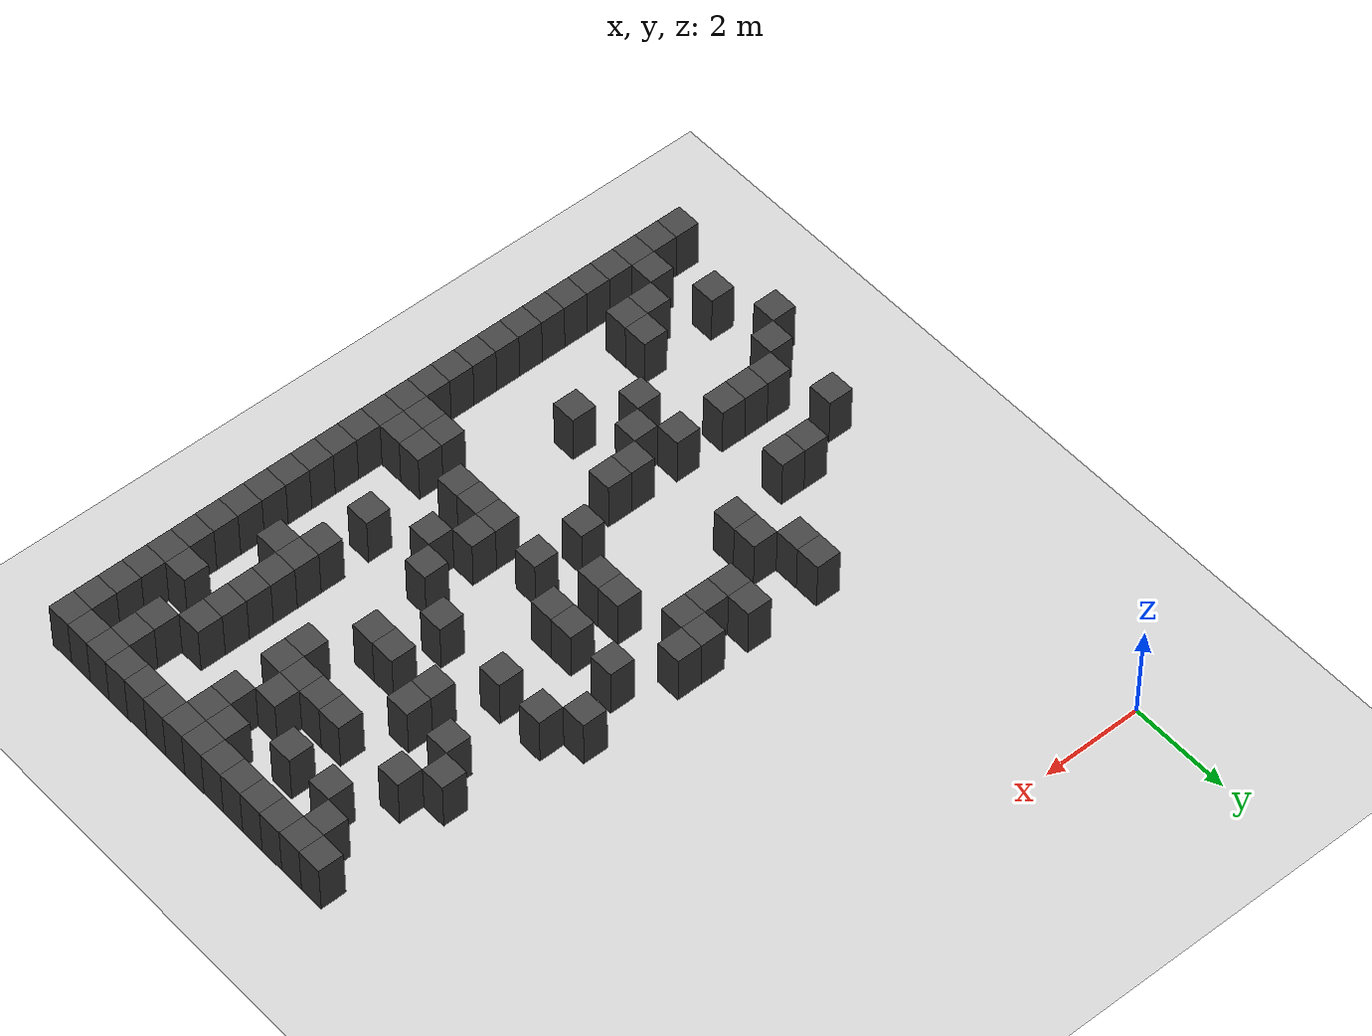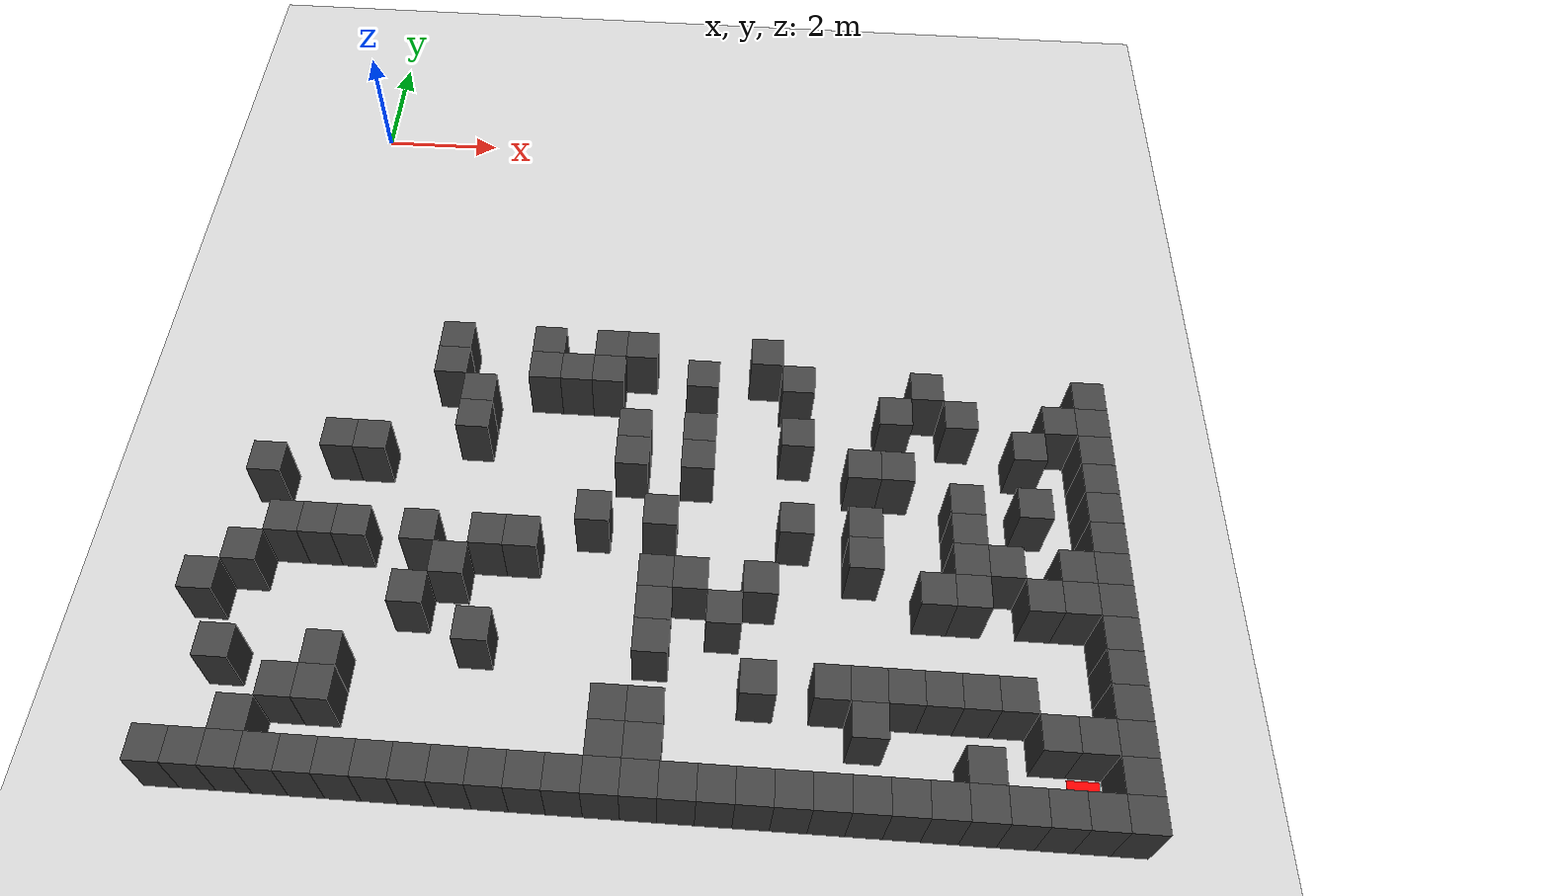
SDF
<sdf version="1.7">
 <world name="map_4752">
  <model name="ground_plane">
   <static>true</static>
   <link name="link">
    <collision name="collision">
     <geometry><plane><normal>0 0 1</normal><size>200 200</size></plane></geometry>
    </collision>
    <visual name="visual">
     <geometry><plane><normal>0 0 1</normal><size>200 200</size></plane></geometry>
     <material><ambient>0.8 0.8 0.8 1</ambient><diffuse>0.8 0.8 0.8 1</diffuse></material>
    </visual>
   </link>
  </model>
  <model name="maze_environment">
   <static>true</static>
   <link name="wall_492">
    <pose>2.250 -5.250 0.500 0 0 0</pose>
    <collision name="col"><geometry><box><size>0.5 0.5 1.0</size></box></geometry></collision>
    <visual name="vis">
     <geometry><box><size>0.5 0.5 1.0</size></box></geometry>
     <material><ambient>0.15 0.15 0.15 1</ambient><diffuse>0.25 0.25 0.25 1</diffuse></material>
    </visual>
   </link>
   <link name="wall_493">
    <pose>3.750 -5.250 0.500 0 0 0</pose>
    <collision name="col"><geometry><box><size>0.5 0.5 1.0</size></box></geometry></collision>
    <visual name="vis">
     <geometry><box><size>0.5 0.5 1.0</size></box></geometry>
     <material><ambient>0.15 0.15 0.15 1</ambient><diffuse>0.25 0.25 0.25 1</diffuse></material>
    </visual>
   </link>
   <link name="wall_494">
    <pose>4.750 -5.250 0.500 0 0 0</pose>
    <collision name="col"><geometry><box><size>0.5 0.5 1.0</size></box></geometry></collision>
    <visual name="vis">
     <geometry><box><size>0.5 0.5 1.0</size></box></geometry>
     <material><ambient>0.15 0.15 0.15 1</ambient><diffuse>0.25 0.25 0.25 1</diffuse></material>
    </visual>
   </link>
   <link name="wall_495">
    <pose>5.250 -5.250 0.500 0 0 0</pose>
    <collision name="col"><geometry><box><size>0.5 0.5 1.0</size></box></geometry></collision>
    <visual name="vis">
     <geometry><box><size>0.5 0.5 1.0</size></box></geometry>
     <material><ambient>0.15 0.15 0.15 1</ambient><diffuse>0.25 0.25 0.25 1</diffuse></material>
    </visual>
   </link>
   <link name="wall_496">
    <pose>7.250 -5.250 0.500 0 0 0</pose>
    <collision name="col"><geometry><box><size>0.5 0.5 1.0</size></box></geometry></collision>
    <visual name="vis">
     <geometry><box><size>0.5 0.5 1.0</size></box></geometry>
     <material><ambient>0.15 0.15 0.15 1</ambient><diffuse>0.25 0.25 0.25 1</diffuse></material>
    </visual>
   </link>
   <link name="wall_503">
    <pose>2.250 -5.750 0.500 0 0 0</pose>
    <collision name="col"><geometry><box><size>0.5 0.5 1.0</size></box></geometry></collision>
    <visual name="vis">
     <geometry><box><size>0.5 0.5 1.0</size></box></geometry>
     <material><ambient>0.15 0.15 0.15 1</ambient><diffuse>0.25 0.25 0.25 1</diffuse></material>
    </visual>
   </link>
   <link name="wall_504">
    <pose>3.750 -5.750 0.500 0 0 0</pose>
    <collision name="col"><geometry><box><size>0.5 0.5 1.0</size></box></geometry></collision>
    <visual name="vis">
     <geometry><box><size>0.5 0.5 1.0</size></box></geometry>
     <material><ambient>0.15 0.15 0.15 1</ambient><diffuse>0.25 0.25 0.25 1</diffuse></material>
    </visual>
   </link>
   <link name="wall_505">
    <pose>4.250 -5.750 0.500 0 0 0</pose>
    <collision name="col"><geometry><box><size>0.5 0.5 1.0</size></box></geometry></collision>
    <visual name="vis">
     <geometry><box><size>0.5 0.5 1.0</size></box></geometry>
     <material><ambient>0.15 0.15 0.15 1</ambient><diffuse>0.25 0.25 0.25 1</diffuse></material>
    </visual>
   </link>
   <link name="wall_506">
    <pose>4.750 -5.750 0.500 0 0 0</pose>
    <collision name="col"><geometry><box><size>0.5 0.5 1.0</size></box></geometry></collision>
    <visual name="vis">
     <geometry><box><size>0.5 0.5 1.0</size></box></geometry>
     <material><ambient>0.15 0.15 0.15 1</ambient><diffuse>0.25 0.25 0.25 1</diffuse></material>
    </visual>
   </link>
   <link name="wall_507">
    <pose>6.250 -5.750 0.500 0 0 0</pose>
    <collision name="col"><geometry><box><size>0.5 0.5 1.0</size></box></geometry></collision>
    <visual name="vis">
     <geometry><box><size>0.5 0.5 1.0</size></box></geometry>
     <material><ambient>0.15 0.15 0.15 1</ambient><diffuse>0.25 0.25 0.25 1</diffuse></material>
    </visual>
   </link>
   <link name="wall_508">
    <pose>7.750 -5.750 0.500 0 0 0</pose>
    <collision name="col"><geometry><box><size>0.5 0.5 1.0</size></box></geometry></collision>
    <visual name="vis">
     <geometry><box><size>0.5 0.5 1.0</size></box></geometry>
     <material><ambient>0.15 0.15 0.15 1</ambient><diffuse>0.25 0.25 0.25 1</diffuse></material>
    </visual>
   </link>
   <link name="wall_509">
    <pose>9.750 -5.750 0.500 0 0 0</pose>
    <collision name="col"><geometry><box><size>0.5 0.5 1.0</size></box></geometry></collision>
    <visual name="vis">
     <geometry><box><size>0.5 0.5 1.0</size></box></geometry>
     <material><ambient>0.15 0.15 0.15 1</ambient><diffuse>0.25 0.25 0.25 1</diffuse></material>
    </visual>
   </link>
   <link name="wall_510">
    <pose>12.250 -5.750 0.500 0 0 0</pose>
    <collision name="col"><geometry><box><size>0.5 0.5 1.0</size></box></geometry></collision>
    <visual name="vis">
     <geometry><box><size>0.5 0.5 1.0</size></box></geometry>
     <material><ambient>0.15 0.15 0.15 1</ambient><diffuse>0.25 0.25 0.25 1</diffuse></material>
    </visual>
   </link>
   <link name="wall_515">
    <pose>2.750 -6.250 0.500 0 0 0</pose>
    <collision name="col"><geometry><box><size>0.5 0.5 1.0</size></box></geometry></collision>
    <visual name="vis">
     <geometry><box><size>0.5 0.5 1.0</size></box></geometry>
     <material><ambient>0.15 0.15 0.15 1</ambient><diffuse>0.25 0.25 0.25 1</diffuse></material>
    </visual>
   </link>
   <link name="wall_516">
    <pose>9.250 -6.250 0.500 0 0 0</pose>
    <collision name="col"><geometry><box><size>0.5 0.5 1.0</size></box></geometry></collision>
    <visual name="vis">
     <geometry><box><size>0.5 0.5 1.0</size></box></geometry>
     <material><ambient>0.15 0.15 0.15 1</ambient><diffuse>0.25 0.25 0.25 1</diffuse></material>
    </visual>
   </link>
   <link name="wall_517">
    <pose>10.250 -6.250 0.500 0 0 0</pose>
    <collision name="col"><geometry><box><size>0.5 0.5 1.0</size></box></geometry></collision>
    <visual name="vis">
     <geometry><box><size>0.5 0.5 1.0</size></box></geometry>
     <material><ambient>0.15 0.15 0.15 1</ambient><diffuse>0.25 0.25 0.25 1</diffuse></material>
    </visual>
   </link>
   <link name="wall_518">
    <pose>11.750 -6.250 0.500 0 0 0</pose>
    <collision name="col"><geometry><box><size>0.5 0.5 1.0</size></box></geometry></collision>
    <visual name="vis">
     <geometry><box><size>0.5 0.5 1.0</size></box></geometry>
     <material><ambient>0.15 0.15 0.15 1</ambient><diffuse>0.25 0.25 0.25 1</diffuse></material>
    </visual>
   </link>
   <link name="wall_519">
    <pose>12.250 -6.250 0.500 0 0 0</pose>
    <collision name="col"><geometry><box><size>0.5 0.5 1.0</size></box></geometry></collision>
    <visual name="vis">
     <geometry><box><size>0.5 0.5 1.0</size></box></geometry>
     <material><ambient>0.15 0.15 0.15 1</ambient><diffuse>0.25 0.25 0.25 1</diffuse></material>
    </visual>
   </link>
   <link name="wall_529">
    <pose>2.750 -6.750 0.500 0 0 0</pose>
    <collision name="col"><geometry><box><size>0.5 0.5 1.0</size></box></geometry></collision>
    <visual name="vis">
     <geometry><box><size>0.5 0.5 1.0</size></box></geometry>
     <material><ambient>0.15 0.15 0.15 1</ambient><diffuse>0.25 0.25 0.25 1</diffuse></material>
    </visual>
   </link>
   <link name="wall_530">
    <pose>5.250 -6.750 0.500 0 0 0</pose>
    <collision name="col"><geometry><box><size>0.5 0.5 1.0</size></box></geometry></collision>
    <visual name="vis">
     <geometry><box><size>0.5 0.5 1.0</size></box></geometry>
     <material><ambient>0.15 0.15 0.15 1</ambient><diffuse>0.25 0.25 0.25 1</diffuse></material>
    </visual>
   </link>
   <link name="wall_531">
    <pose>6.250 -6.750 0.500 0 0 0</pose>
    <collision name="col"><geometry><box><size>0.5 0.5 1.0</size></box></geometry></collision>
    <visual name="vis">
     <geometry><box><size>0.5 0.5 1.0</size></box></geometry>
     <material><ambient>0.15 0.15 0.15 1</ambient><diffuse>0.25 0.25 0.25 1</diffuse></material>
    </visual>
   </link>
   <link name="wall_532">
    <pose>7.750 -6.750 0.500 0 0 0</pose>
    <collision name="col"><geometry><box><size>0.5 0.5 1.0</size></box></geometry></collision>
    <visual name="vis">
     <geometry><box><size>0.5 0.5 1.0</size></box></geometry>
     <material><ambient>0.15 0.15 0.15 1</ambient><diffuse>0.25 0.25 0.25 1</diffuse></material>
    </visual>
   </link>
   <link name="wall_533">
    <pose>11.250 -6.750 0.500 0 0 0</pose>
    <collision name="col"><geometry><box><size>0.5 0.5 1.0</size></box></geometry></collision>
    <visual name="vis">
     <geometry><box><size>0.5 0.5 1.0</size></box></geometry>
     <material><ambient>0.15 0.15 0.15 1</ambient><diffuse>0.25 0.25 0.25 1</diffuse></material>
    </visual>
   </link>
   <link name="wall_534">
    <pose>12.250 -6.750 0.500 0 0 0</pose>
    <collision name="col"><geometry><box><size>0.5 0.5 1.0</size></box></geometry></collision>
    <visual name="vis">
     <geometry><box><size>0.5 0.5 1.0</size></box></geometry>
     <material><ambient>0.15 0.15 0.15 1</ambient><diffuse>0.25 0.25 0.25 1</diffuse></material>
    </visual>
   </link>
   <link name="wall_542">
    <pose>0.750 -7.250 0.500 0 0 0</pose>
    <collision name="col"><geometry><box><size>0.5 0.5 1.0</size></box></geometry></collision>
    <visual name="vis">
     <geometry><box><size>0.5 0.5 1.0</size></box></geometry>
     <material><ambient>0.15 0.15 0.15 1</ambient><diffuse>0.25 0.25 0.25 1</diffuse></material>
    </visual>
   </link>
   <link name="wall_543">
    <pose>1.250 -7.250 0.500 0 0 0</pose>
    <collision name="col"><geometry><box><size>0.5 0.5 1.0</size></box></geometry></collision>
    <visual name="vis">
     <geometry><box><size>0.5 0.5 1.0</size></box></geometry>
     <material><ambient>0.15 0.15 0.15 1</ambient><diffuse>0.25 0.25 0.25 1</diffuse></material>
    </visual>
   </link>
   <link name="wall_544">
    <pose>5.250 -7.250 0.500 0 0 0</pose>
    <collision name="col"><geometry><box><size>0.5 0.5 1.0</size></box></geometry></collision>
    <visual name="vis">
     <geometry><box><size>0.5 0.5 1.0</size></box></geometry>
     <material><ambient>0.15 0.15 0.15 1</ambient><diffuse>0.25 0.25 0.25 1</diffuse></material>
    </visual>
   </link>
   <link name="wall_545">
    <pose>6.250 -7.250 0.500 0 0 0</pose>
    <collision name="col"><geometry><box><size>0.5 0.5 1.0</size></box></geometry></collision>
    <visual name="vis">
     <geometry><box><size>0.5 0.5 1.0</size></box></geometry>
     <material><ambient>0.15 0.15 0.15 1</ambient><diffuse>0.25 0.25 0.25 1</diffuse></material>
    </visual>
   </link>
   <link name="wall_546">
    <pose>8.750 -7.250 0.500 0 0 0</pose>
    <collision name="col"><geometry><box><size>0.5 0.5 1.0</size></box></geometry></collision>
    <visual name="vis">
     <geometry><box><size>0.5 0.5 1.0</size></box></geometry>
     <material><ambient>0.15 0.15 0.15 1</ambient><diffuse>0.25 0.25 0.25 1</diffuse></material>
    </visual>
   </link>
   <link name="wall_547">
    <pose>9.250 -7.250 0.500 0 0 0</pose>
    <collision name="col"><geometry><box><size>0.5 0.5 1.0</size></box></geometry></collision>
    <visual name="vis">
     <geometry><box><size>0.5 0.5 1.0</size></box></geometry>
     <material><ambient>0.15 0.15 0.15 1</ambient><diffuse>0.25 0.25 0.25 1</diffuse></material>
    </visual>
   </link>
   <link name="wall_548">
    <pose>12.250 -7.250 0.500 0 0 0</pose>
    <collision name="col"><geometry><box><size>0.5 0.5 1.0</size></box></geometry></collision>
    <visual name="vis">
     <geometry><box><size>0.5 0.5 1.0</size></box></geometry>
     <material><ambient>0.15 0.15 0.15 1</ambient><diffuse>0.25 0.25 0.25 1</diffuse></material>
    </visual>
   </link>
   <link name="wall_555">
    <pose>-0.250 -7.750 0.500 0 0 0</pose>
    <collision name="col"><geometry><box><size>0.5 0.5 1.0</size></box></geometry></collision>
    <visual name="vis">
     <geometry><box><size>0.5 0.5 1.0</size></box></geometry>
     <material><ambient>0.15 0.15 0.15 1</ambient><diffuse>0.25 0.25 0.25 1</diffuse></material>
    </visual>
   </link>
   <link name="wall_556">
    <pose>10.250 -7.750 0.500 0 0 0</pose>
    <collision name="col"><geometry><box><size>0.5 0.5 1.0</size></box></geometry></collision>
    <visual name="vis">
     <geometry><box><size>0.5 0.5 1.0</size></box></geometry>
     <material><ambient>0.15 0.15 0.15 1</ambient><diffuse>0.25 0.25 0.25 1</diffuse></material>
    </visual>
   </link>
   <link name="wall_557">
    <pose>11.250 -7.750 0.500 0 0 0</pose>
    <collision name="col"><geometry><box><size>0.5 0.5 1.0</size></box></geometry></collision>
    <visual name="vis">
     <geometry><box><size>0.5 0.5 1.0</size></box></geometry>
     <material><ambient>0.15 0.15 0.15 1</ambient><diffuse>0.25 0.25 0.25 1</diffuse></material>
    </visual>
   </link>
   <link name="wall_558">
    <pose>12.250 -7.750 0.500 0 0 0</pose>
    <collision name="col"><geometry><box><size>0.5 0.5 1.0</size></box></geometry></collision>
    <visual name="vis">
     <geometry><box><size>0.5 0.5 1.0</size></box></geometry>
     <material><ambient>0.15 0.15 0.15 1</ambient><diffuse>0.25 0.25 0.25 1</diffuse></material>
    </visual>
   </link>
   <link name="wall_568">
    <pose>4.750 -8.250 0.500 0 0 0</pose>
    <collision name="col"><geometry><box><size>0.5 0.5 1.0</size></box></geometry></collision>
    <visual name="vis">
     <geometry><box><size>0.5 0.5 1.0</size></box></geometry>
     <material><ambient>0.15 0.15 0.15 1</ambient><diffuse>0.25 0.25 0.25 1</diffuse></material>
    </visual>
   </link>
   <link name="wall_569">
    <pose>5.750 -8.250 0.500 0 0 0</pose>
    <collision name="col"><geometry><box><size>0.5 0.5 1.0</size></box></geometry></collision>
    <visual name="vis">
     <geometry><box><size>0.5 0.5 1.0</size></box></geometry>
     <material><ambient>0.15 0.15 0.15 1</ambient><diffuse>0.25 0.25 0.25 1</diffuse></material>
    </visual>
   </link>
   <link name="wall_570">
    <pose>7.750 -8.250 0.500 0 0 0</pose>
    <collision name="col"><geometry><box><size>0.5 0.5 1.0</size></box></geometry></collision>
    <visual name="vis">
     <geometry><box><size>0.5 0.5 1.0</size></box></geometry>
     <material><ambient>0.15 0.15 0.15 1</ambient><diffuse>0.25 0.25 0.25 1</diffuse></material>
    </visual>
   </link>
   <link name="wall_571">
    <pose>8.750 -8.250 0.500 0 0 0</pose>
    <collision name="col"><geometry><box><size>0.5 0.5 1.0</size></box></geometry></collision>
    <visual name="vis">
     <geometry><box><size>0.5 0.5 1.0</size></box></geometry>
     <material><ambient>0.15 0.15 0.15 1</ambient><diffuse>0.25 0.25 0.25 1</diffuse></material>
    </visual>
   </link>
   <link name="wall_572">
    <pose>10.250 -8.250 0.500 0 0 0</pose>
    <collision name="col"><geometry><box><size>0.5 0.5 1.0</size></box></geometry></collision>
    <visual name="vis">
     <geometry><box><size>0.5 0.5 1.0</size></box></geometry>
     <material><ambient>0.15 0.15 0.15 1</ambient><diffuse>0.25 0.25 0.25 1</diffuse></material>
    </visual>
   </link>
   <link name="wall_573">
    <pose>12.250 -8.250 0.500 0 0 0</pose>
    <collision name="col"><geometry><box><size>0.5 0.5 1.0</size></box></geometry></collision>
    <visual name="vis">
     <geometry><box><size>0.5 0.5 1.0</size></box></geometry>
     <material><ambient>0.15 0.15 0.15 1</ambient><diffuse>0.25 0.25 0.25 1</diffuse></material>
    </visual>
   </link>
   <link name="wall_582">
    <pose>0.250 -8.750 0.500 0 0 0</pose>
    <collision name="col"><geometry><box><size>0.5 0.5 1.0</size></box></geometry></collision>
    <visual name="vis">
     <geometry><box><size>0.5 0.5 1.0</size></box></geometry>
     <material><ambient>0.15 0.15 0.15 1</ambient><diffuse>0.25 0.25 0.25 1</diffuse></material>
    </visual>
   </link>
   <link name="wall_583">
    <pose>0.750 -8.750 0.500 0 0 0</pose>
    <collision name="col"><geometry><box><size>0.5 0.5 1.0</size></box></geometry></collision>
    <visual name="vis">
     <geometry><box><size>0.5 0.5 1.0</size></box></geometry>
     <material><ambient>0.15 0.15 0.15 1</ambient><diffuse>0.25 0.25 0.25 1</diffuse></material>
    </visual>
   </link>
   <link name="wall_584">
    <pose>1.250 -8.750 0.500 0 0 0</pose>
    <collision name="col"><geometry><box><size>0.5 0.5 1.0</size></box></geometry></collision>
    <visual name="vis">
     <geometry><box><size>0.5 0.5 1.0</size></box></geometry>
     <material><ambient>0.15 0.15 0.15 1</ambient><diffuse>0.25 0.25 0.25 1</diffuse></material>
    </visual>
   </link>
   <link name="wall_585">
    <pose>2.250 -8.750 0.500 0 0 0</pose>
    <collision name="col"><geometry><box><size>0.5 0.5 1.0</size></box></geometry></collision>
    <visual name="vis">
     <geometry><box><size>0.5 0.5 1.0</size></box></geometry>
     <material><ambient>0.15 0.15 0.15 1</ambient><diffuse>0.25 0.25 0.25 1</diffuse></material>
    </visual>
   </link>
   <link name="wall_586">
    <pose>3.250 -8.750 0.500 0 0 0</pose>
    <collision name="col"><geometry><box><size>0.5 0.5 1.0</size></box></geometry></collision>
    <visual name="vis">
     <geometry><box><size>0.5 0.5 1.0</size></box></geometry>
     <material><ambient>0.15 0.15 0.15 1</ambient><diffuse>0.25 0.25 0.25 1</diffuse></material>
    </visual>
   </link>
   <link name="wall_587">
    <pose>3.750 -8.750 0.500 0 0 0</pose>
    <collision name="col"><geometry><box><size>0.5 0.5 1.0</size></box></geometry></collision>
    <visual name="vis">
     <geometry><box><size>0.5 0.5 1.0</size></box></geometry>
     <material><ambient>0.15 0.15 0.15 1</ambient><diffuse>0.25 0.25 0.25 1</diffuse></material>
    </visual>
   </link>
   <link name="wall_588">
    <pose>8.750 -8.750 0.500 0 0 0</pose>
    <collision name="col"><geometry><box><size>0.5 0.5 1.0</size></box></geometry></collision>
    <visual name="vis">
     <geometry><box><size>0.5 0.5 1.0</size></box></geometry>
     <material><ambient>0.15 0.15 0.15 1</ambient><diffuse>0.25 0.25 0.25 1</diffuse></material>
    </visual>
   </link>
   <link name="wall_589">
    <pose>10.250 -8.750 0.500 0 0 0</pose>
    <collision name="col"><geometry><box><size>0.5 0.5 1.0</size></box></geometry></collision>
    <visual name="vis">
     <geometry><box><size>0.5 0.5 1.0</size></box></geometry>
     <material><ambient>0.15 0.15 0.15 1</ambient><diffuse>0.25 0.25 0.25 1</diffuse></material>
    </visual>
   </link>
   <link name="wall_590">
    <pose>10.750 -8.750 0.500 0 0 0</pose>
    <collision name="col"><geometry><box><size>0.5 0.5 1.0</size></box></geometry></collision>
    <visual name="vis">
     <geometry><box><size>0.5 0.5 1.0</size></box></geometry>
     <material><ambient>0.15 0.15 0.15 1</ambient><diffuse>0.25 0.25 0.25 1</diffuse></material>
    </visual>
   </link>
   <link name="wall_591">
    <pose>11.750 -8.750 0.500 0 0 0</pose>
    <collision name="col"><geometry><box><size>0.5 0.5 1.0</size></box></geometry></collision>
    <visual name="vis">
     <geometry><box><size>0.5 0.5 1.0</size></box></geometry>
     <material><ambient>0.15 0.15 0.15 1</ambient><diffuse>0.25 0.25 0.25 1</diffuse></material>
    </visual>
   </link>
   <link name="wall_592">
    <pose>12.250 -8.750 0.500 0 0 0</pose>
    <collision name="col"><geometry><box><size>0.5 0.5 1.0</size></box></geometry></collision>
    <visual name="vis">
     <geometry><box><size>0.5 0.5 1.0</size></box></geometry>
     <material><ambient>0.15 0.15 0.15 1</ambient><diffuse>0.25 0.25 0.25 1</diffuse></material>
    </visual>
   </link>
   <link name="wall_598">
    <pose>-0.250 -9.250 0.500 0 0 0</pose>
    <collision name="col"><geometry><box><size>0.5 0.5 1.0</size></box></geometry></collision>
    <visual name="vis">
     <geometry><box><size>0.5 0.5 1.0</size></box></geometry>
     <material><ambient>0.15 0.15 0.15 1</ambient><diffuse>0.25 0.25 0.25 1</diffuse></material>
    </visual>
   </link>
   <link name="wall_599">
    <pose>2.750 -9.250 0.500 0 0 0</pose>
    <collision name="col"><geometry><box><size>0.5 0.5 1.0</size></box></geometry></collision>
    <visual name="vis">
     <geometry><box><size>0.5 0.5 1.0</size></box></geometry>
     <material><ambient>0.15 0.15 0.15 1</ambient><diffuse>0.25 0.25 0.25 1</diffuse></material>
    </visual>
   </link>
   <link name="wall_600">
    <pose>5.750 -9.250 0.500 0 0 0</pose>
    <collision name="col"><geometry><box><size>0.5 0.5 1.0</size></box></geometry></collision>
    <visual name="vis">
     <geometry><box><size>0.5 0.5 1.0</size></box></geometry>
     <material><ambient>0.15 0.15 0.15 1</ambient><diffuse>0.25 0.25 0.25 1</diffuse></material>
    </visual>
   </link>
   <link name="wall_601">
    <pose>6.250 -9.250 0.500 0 0 0</pose>
    <collision name="col"><geometry><box><size>0.5 0.5 1.0</size></box></geometry></collision>
    <visual name="vis">
     <geometry><box><size>0.5 0.5 1.0</size></box></geometry>
     <material><ambient>0.15 0.15 0.15 1</ambient><diffuse>0.25 0.25 0.25 1</diffuse></material>
    </visual>
   </link>
   <link name="wall_602">
    <pose>7.250 -9.250 0.500 0 0 0</pose>
    <collision name="col"><geometry><box><size>0.5 0.5 1.0</size></box></geometry></collision>
    <visual name="vis">
     <geometry><box><size>0.5 0.5 1.0</size></box></geometry>
     <material><ambient>0.15 0.15 0.15 1</ambient><diffuse>0.25 0.25 0.25 1</diffuse></material>
    </visual>
   </link>
   <link name="wall_603">
    <pose>9.750 -9.250 0.500 0 0 0</pose>
    <collision name="col"><geometry><box><size>0.5 0.5 1.0</size></box></geometry></collision>
    <visual name="vis">
     <geometry><box><size>0.5 0.5 1.0</size></box></geometry>
     <material><ambient>0.15 0.15 0.15 1</ambient><diffuse>0.25 0.25 0.25 1</diffuse></material>
    </visual>
   </link>
   <link name="wall_604">
    <pose>10.250 -9.250 0.500 0 0 0</pose>
    <collision name="col"><geometry><box><size>0.5 0.5 1.0</size></box></geometry></collision>
    <visual name="vis">
     <geometry><box><size>0.5 0.5 1.0</size></box></geometry>
     <material><ambient>0.15 0.15 0.15 1</ambient><diffuse>0.25 0.25 0.25 1</diffuse></material>
    </visual>
   </link>
   <link name="wall_605">
    <pose>11.250 -9.250 0.500 0 0 0</pose>
    <collision name="col"><geometry><box><size>0.5 0.5 1.0</size></box></geometry></collision>
    <visual name="vis">
     <geometry><box><size>0.5 0.5 1.0</size></box></geometry>
     <material><ambient>0.15 0.15 0.15 1</ambient><diffuse>0.25 0.25 0.25 1</diffuse></material>
    </visual>
   </link>
   <link name="wall_606">
    <pose>11.750 -9.250 0.500 0 0 0</pose>
    <collision name="col"><geometry><box><size>0.5 0.5 1.0</size></box></geometry></collision>
    <visual name="vis">
     <geometry><box><size>0.5 0.5 1.0</size></box></geometry>
     <material><ambient>0.15 0.15 0.15 1</ambient><diffuse>0.25 0.25 0.25 1</diffuse></material>
    </visual>
   </link>
   <link name="wall_607">
    <pose>12.250 -9.250 0.500 0 0 0</pose>
    <collision name="col"><geometry><box><size>0.5 0.5 1.0</size></box></geometry></collision>
    <visual name="vis">
     <geometry><box><size>0.5 0.5 1.0</size></box></geometry>
     <material><ambient>0.15 0.15 0.15 1</ambient><diffuse>0.25 0.25 0.25 1</diffuse></material>
    </visual>
   </link>
   <link name="wall_613">
    <pose>-0.750 -9.750 0.500 0 0 0</pose>
    <collision name="col"><geometry><box><size>0.5 0.5 1.0</size></box></geometry></collision>
    <visual name="vis">
     <geometry><box><size>0.5 0.5 1.0</size></box></geometry>
     <material><ambient>0.15 0.15 0.15 1</ambient><diffuse>0.25 0.25 0.25 1</diffuse></material>
    </visual>
   </link>
   <link name="wall_614">
    <pose>2.250 -9.750 0.500 0 0 0</pose>
    <collision name="col"><geometry><box><size>0.5 0.5 1.0</size></box></geometry></collision>
    <visual name="vis">
     <geometry><box><size>0.5 0.5 1.0</size></box></geometry>
     <material><ambient>0.15 0.15 0.15 1</ambient><diffuse>0.25 0.25 0.25 1</diffuse></material>
    </visual>
   </link>
   <link name="wall_615">
    <pose>5.750 -9.750 0.500 0 0 0</pose>
    <collision name="col"><geometry><box><size>0.5 0.5 1.0</size></box></geometry></collision>
    <visual name="vis">
     <geometry><box><size>0.5 0.5 1.0</size></box></geometry>
     <material><ambient>0.15 0.15 0.15 1</ambient><diffuse>0.25 0.25 0.25 1</diffuse></material>
    </visual>
   </link>
   <link name="wall_616">
    <pose>6.750 -9.750 0.500 0 0 0</pose>
    <collision name="col"><geometry><box><size>0.5 0.5 1.0</size></box></geometry></collision>
    <visual name="vis">
     <geometry><box><size>0.5 0.5 1.0</size></box></geometry>
     <material><ambient>0.15 0.15 0.15 1</ambient><diffuse>0.25 0.25 0.25 1</diffuse></material>
    </visual>
   </link>
   <link name="wall_617">
    <pose>12.250 -9.750 0.500 0 0 0</pose>
    <collision name="col"><geometry><box><size>0.5 0.5 1.0</size></box></geometry></collision>
    <visual name="vis">
     <geometry><box><size>0.5 0.5 1.0</size></box></geometry>
     <material><ambient>0.15 0.15 0.15 1</ambient><diffuse>0.25 0.25 0.25 1</diffuse></material>
    </visual>
   </link>
   <link name="wall_625">
    <pose>3.250 -10.250 0.500 0 0 0</pose>
    <collision name="col"><geometry><box><size>0.5 0.5 1.0</size></box></geometry></collision>
    <visual name="vis">
     <geometry><box><size>0.5 0.5 1.0</size></box></geometry>
     <material><ambient>0.15 0.15 0.15 1</ambient><diffuse>0.25 0.25 0.25 1</diffuse></material>
    </visual>
   </link>
   <link name="wall_626">
    <pose>5.750 -10.250 0.500 0 0 0</pose>
    <collision name="col"><geometry><box><size>0.5 0.5 1.0</size></box></geometry></collision>
    <visual name="vis">
     <geometry><box><size>0.5 0.5 1.0</size></box></geometry>
     <material><ambient>0.15 0.15 0.15 1</ambient><diffuse>0.25 0.25 0.25 1</diffuse></material>
    </visual>
   </link>
   <link name="wall_627">
    <pose>12.250 -10.250 0.500 0 0 0</pose>
    <collision name="col"><geometry><box><size>0.5 0.5 1.0</size></box></geometry></collision>
    <visual name="vis">
     <geometry><box><size>0.5 0.5 1.0</size></box></geometry>
     <material><ambient>0.15 0.15 0.15 1</ambient><diffuse>0.25 0.25 0.25 1</diffuse></material>
    </visual>
   </link>
   <link name="wall_633">
    <pose>-0.250 -10.750 0.500 0 0 0</pose>
    <collision name="col"><geometry><box><size>0.5 0.5 1.0</size></box></geometry></collision>
    <visual name="vis">
     <geometry><box><size>0.5 0.5 1.0</size></box></geometry>
     <material><ambient>0.15 0.15 0.15 1</ambient><diffuse>0.25 0.25 0.25 1</diffuse></material>
    </visual>
   </link>
   <link name="wall_634">
    <pose>1.250 -10.750 0.500 0 0 0</pose>
    <collision name="col"><geometry><box><size>0.5 0.5 1.0</size></box></geometry></collision>
    <visual name="vis">
     <geometry><box><size>0.5 0.5 1.0</size></box></geometry>
     <material><ambient>0.15 0.15 0.15 1</ambient><diffuse>0.25 0.25 0.25 1</diffuse></material>
    </visual>
   </link>
   <link name="wall_635">
    <pose>7.250 -10.750 0.500 0 0 0</pose>
    <collision name="col"><geometry><box><size>0.5 0.5 1.0</size></box></geometry></collision>
    <visual name="vis">
     <geometry><box><size>0.5 0.5 1.0</size></box></geometry>
     <material><ambient>0.15 0.15 0.15 1</ambient><diffuse>0.25 0.25 0.25 1</diffuse></material>
    </visual>
   </link>
   <link name="wall_636">
    <pose>8.250 -10.750 0.500 0 0 0</pose>
    <collision name="col"><geometry><box><size>0.5 0.5 1.0</size></box></geometry></collision>
    <visual name="vis">
     <geometry><box><size>0.5 0.5 1.0</size></box></geometry>
     <material><ambient>0.15 0.15 0.15 1</ambient><diffuse>0.25 0.25 0.25 1</diffuse></material>
    </visual>
   </link>
   <link name="wall_637">
    <pose>8.750 -10.750 0.500 0 0 0</pose>
    <collision name="col"><geometry><box><size>0.5 0.5 1.0</size></box></geometry></collision>
    <visual name="vis">
     <geometry><box><size>0.5 0.5 1.0</size></box></geometry>
     <material><ambient>0.15 0.15 0.15 1</ambient><diffuse>0.25 0.25 0.25 1</diffuse></material>
    </visual>
   </link>
   <link name="wall_638">
    <pose>9.250 -10.750 0.500 0 0 0</pose>
    <collision name="col"><geometry><box><size>0.5 0.5 1.0</size></box></geometry></collision>
    <visual name="vis">
     <geometry><box><size>0.5 0.5 1.0</size></box></geometry>
     <material><ambient>0.15 0.15 0.15 1</ambient><diffuse>0.25 0.25 0.25 1</diffuse></material>
    </visual>
   </link>
   <link name="wall_639">
    <pose>9.750 -10.750 0.500 0 0 0</pose>
    <collision name="col"><geometry><box><size>0.5 0.5 1.0</size></box></geometry></collision>
    <visual name="vis">
     <geometry><box><size>0.5 0.5 1.0</size></box></geometry>
     <material><ambient>0.15 0.15 0.15 1</ambient><diffuse>0.25 0.25 0.25 1</diffuse></material>
    </visual>
   </link>
   <link name="wall_640">
    <pose>10.250 -10.750 0.500 0 0 0</pose>
    <collision name="col"><geometry><box><size>0.5 0.5 1.0</size></box></geometry></collision>
    <visual name="vis">
     <geometry><box><size>0.5 0.5 1.0</size></box></geometry>
     <material><ambient>0.15 0.15 0.15 1</ambient><diffuse>0.25 0.25 0.25 1</diffuse></material>
    </visual>
   </link>
   <link name="wall_641">
    <pose>10.750 -10.750 0.500 0 0 0</pose>
    <collision name="col"><geometry><box><size>0.5 0.5 1.0</size></box></geometry></collision>
    <visual name="vis">
     <geometry><box><size>0.5 0.5 1.0</size></box></geometry>
     <material><ambient>0.15 0.15 0.15 1</ambient><diffuse>0.25 0.25 0.25 1</diffuse></material>
    </visual>
   </link>
   <link name="wall_642">
    <pose>12.250 -10.750 0.500 0 0 0</pose>
    <collision name="col"><geometry><box><size>0.5 0.5 1.0</size></box></geometry></collision>
    <visual name="vis">
     <geometry><box><size>0.5 0.5 1.0</size></box></geometry>
     <material><ambient>0.15 0.15 0.15 1</ambient><diffuse>0.25 0.25 0.25 1</diffuse></material>
    </visual>
   </link>
   <link name="wall_651">
    <pose>0.750 -11.250 0.500 0 0 0</pose>
    <collision name="col"><geometry><box><size>0.5 0.5 1.0</size></box></geometry></collision>
    <visual name="vis">
     <geometry><box><size>0.5 0.5 1.0</size></box></geometry>
     <material><ambient>0.15 0.15 0.15 1</ambient><diffuse>0.25 0.25 0.25 1</diffuse></material>
    </visual>
   </link>
   <link name="wall_652">
    <pose>1.250 -11.250 0.500 0 0 0</pose>
    <collision name="col"><geometry><box><size>0.5 0.5 1.0</size></box></geometry></collision>
    <visual name="vis">
     <geometry><box><size>0.5 0.5 1.0</size></box></geometry>
     <material><ambient>0.15 0.15 0.15 1</ambient><diffuse>0.25 0.25 0.25 1</diffuse></material>
    </visual>
   </link>
   <link name="wall_653">
    <pose>5.250 -11.250 0.500 0 0 0</pose>
    <collision name="col"><geometry><box><size>0.5 0.5 1.0</size></box></geometry></collision>
    <visual name="vis">
     <geometry><box><size>0.5 0.5 1.0</size></box></geometry>
     <material><ambient>0.15 0.15 0.15 1</ambient><diffuse>0.25 0.25 0.25 1</diffuse></material>
    </visual>
   </link>
   <link name="wall_654">
    <pose>5.750 -11.250 0.500 0 0 0</pose>
    <collision name="col"><geometry><box><size>0.5 0.5 1.0</size></box></geometry></collision>
    <visual name="vis">
     <geometry><box><size>0.5 0.5 1.0</size></box></geometry>
     <material><ambient>0.15 0.15 0.15 1</ambient><diffuse>0.25 0.25 0.25 1</diffuse></material>
    </visual>
   </link>
   <link name="wall_655">
    <pose>8.750 -11.250 0.500 0 0 0</pose>
    <collision name="col"><geometry><box><size>0.5 0.5 1.0</size></box></geometry></collision>
    <visual name="vis">
     <geometry><box><size>0.5 0.5 1.0</size></box></geometry>
     <material><ambient>0.15 0.15 0.15 1</ambient><diffuse>0.25 0.25 0.25 1</diffuse></material>
    </visual>
   </link>
   <link name="wall_656">
    <pose>11.250 -11.250 0.500 0 0 0</pose>
    <collision name="col"><geometry><box><size>0.5 0.5 1.0</size></box></geometry></collision>
    <visual name="vis">
     <geometry><box><size>0.5 0.5 1.0</size></box></geometry>
     <material><ambient>0.15 0.15 0.15 1</ambient><diffuse>0.25 0.25 0.25 1</diffuse></material>
    </visual>
   </link>
   <link name="wall_657">
    <pose>11.750 -11.250 0.500 0 0 0</pose>
    <collision name="col"><geometry><box><size>0.5 0.5 1.0</size></box></geometry></collision>
    <visual name="vis">
     <geometry><box><size>0.5 0.5 1.0</size></box></geometry>
     <material><ambient>0.15 0.15 0.15 1</ambient><diffuse>0.25 0.25 0.25 1</diffuse></material>
    </visual>
   </link>
   <link name="wall_658">
    <pose>12.250 -11.250 0.500 0 0 0</pose>
    <collision name="col"><geometry><box><size>0.5 0.5 1.0</size></box></geometry></collision>
    <visual name="vis">
     <geometry><box><size>0.5 0.5 1.0</size></box></geometry>
     <material><ambient>0.15 0.15 0.15 1</ambient><diffuse>0.25 0.25 0.25 1</diffuse></material>
    </visual>
   </link>
   <link name="wall_666">
    <pose>0.250 -11.750 0.500 0 0 0</pose>
    <collision name="col"><geometry><box><size>0.5 0.5 1.0</size></box></geometry></collision>
    <visual name="vis">
     <geometry><box><size>0.5 0.5 1.0</size></box></geometry>
     <material><ambient>0.15 0.15 0.15 1</ambient><diffuse>0.25 0.25 0.25 1</diffuse></material>
    </visual>
   </link>
   <link name="wall_667">
    <pose>5.250 -11.750 0.500 0 0 0</pose>
    <collision name="col"><geometry><box><size>0.5 0.5 1.0</size></box></geometry></collision>
    <visual name="vis">
     <geometry><box><size>0.5 0.5 1.0</size></box></geometry>
     <material><ambient>0.15 0.15 0.15 1</ambient><diffuse>0.25 0.25 0.25 1</diffuse></material>
    </visual>
   </link>
   <link name="wall_668">
    <pose>5.750 -11.750 0.500 0 0 0</pose>
    <collision name="col"><geometry><box><size>0.5 0.5 1.0</size></box></geometry></collision>
    <visual name="vis">
     <geometry><box><size>0.5 0.5 1.0</size></box></geometry>
     <material><ambient>0.15 0.15 0.15 1</ambient><diffuse>0.25 0.25 0.25 1</diffuse></material>
    </visual>
   </link>
   <link name="wall_669">
    <pose>10.250 -11.750 0.500 0 0 0</pose>
    <collision name="col"><geometry><box><size>0.5 0.5 1.0</size></box></geometry></collision>
    <visual name="vis">
     <geometry><box><size>0.5 0.5 1.0</size></box></geometry>
     <material><ambient>0.15 0.15 0.15 1</ambient><diffuse>0.25 0.25 0.25 1</diffuse></material>
    </visual>
   </link>
   <link name="wall_670">
    <pose>12.250 -11.750 0.500 0 0 0</pose>
    <collision name="col"><geometry><box><size>0.5 0.5 1.0</size></box></geometry></collision>
    <visual name="vis">
     <geometry><box><size>0.5 0.5 1.0</size></box></geometry>
     <material><ambient>0.15 0.15 0.15 1</ambient><diffuse>0.25 0.25 0.25 1</diffuse></material>
    </visual>
   </link>
   <link name="wall_694">
    <pose>-0.750 -12.250 0.500 0 0 0</pose>
    <collision name="col"><geometry><box><size>0.5 0.5 1.0</size></box></geometry></collision>
    <visual name="vis">
     <geometry><box><size>0.5 0.5 1.0</size></box></geometry>
     <material><ambient>0.15 0.15 0.15 1</ambient><diffuse>0.25 0.25 0.25 1</diffuse></material>
    </visual>
   </link>
   <link name="wall_695">
    <pose>-0.250 -12.250 0.500 0 0 0</pose>
    <collision name="col"><geometry><box><size>0.5 0.5 1.0</size></box></geometry></collision>
    <visual name="vis">
     <geometry><box><size>0.5 0.5 1.0</size></box></geometry>
     <material><ambient>0.15 0.15 0.15 1</ambient><diffuse>0.25 0.25 0.25 1</diffuse></material>
    </visual>
   </link>
   <link name="wall_696">
    <pose>0.250 -12.250 0.500 0 0 0</pose>
    <collision name="col"><geometry><box><size>0.5 0.5 1.0</size></box></geometry></collision>
    <visual name="vis">
     <geometry><box><size>0.5 0.5 1.0</size></box></geometry>
     <material><ambient>0.15 0.15 0.15 1</ambient><diffuse>0.25 0.25 0.25 1</diffuse></material>
    </visual>
   </link>
   <link name="wall_697">
    <pose>0.750 -12.250 0.500 0 0 0</pose>
    <collision name="col"><geometry><box><size>0.5 0.5 1.0</size></box></geometry></collision>
    <visual name="vis">
     <geometry><box><size>0.5 0.5 1.0</size></box></geometry>
     <material><ambient>0.15 0.15 0.15 1</ambient><diffuse>0.25 0.25 0.25 1</diffuse></material>
    </visual>
   </link>
   <link name="wall_698">
    <pose>1.250 -12.250 0.500 0 0 0</pose>
    <collision name="col"><geometry><box><size>0.5 0.5 1.0</size></box></geometry></collision>
    <visual name="vis">
     <geometry><box><size>0.5 0.5 1.0</size></box></geometry>
     <material><ambient>0.15 0.15 0.15 1</ambient><diffuse>0.25 0.25 0.25 1</diffuse></material>
    </visual>
   </link>
   <link name="wall_699">
    <pose>1.750 -12.250 0.500 0 0 0</pose>
    <collision name="col"><geometry><box><size>0.5 0.5 1.0</size></box></geometry></collision>
    <visual name="vis">
     <geometry><box><size>0.5 0.5 1.0</size></box></geometry>
     <material><ambient>0.15 0.15 0.15 1</ambient><diffuse>0.25 0.25 0.25 1</diffuse></material>
    </visual>
   </link>
   <link name="wall_700">
    <pose>2.250 -12.250 0.500 0 0 0</pose>
    <collision name="col"><geometry><box><size>0.5 0.5 1.0</size></box></geometry></collision>
    <visual name="vis">
     <geometry><box><size>0.5 0.5 1.0</size></box></geometry>
     <material><ambient>0.15 0.15 0.15 1</ambient><diffuse>0.25 0.25 0.25 1</diffuse></material>
    </visual>
   </link>
   <link name="wall_701">
    <pose>2.750 -12.250 0.500 0 0 0</pose>
    <collision name="col"><geometry><box><size>0.5 0.5 1.0</size></box></geometry></collision>
    <visual name="vis">
     <geometry><box><size>0.5 0.5 1.0</size></box></geometry>
     <material><ambient>0.15 0.15 0.15 1</ambient><diffuse>0.25 0.25 0.25 1</diffuse></material>
    </visual>
   </link>
   <link name="wall_702">
    <pose>3.250 -12.250 0.500 0 0 0</pose>
    <collision name="col"><geometry><box><size>0.5 0.5 1.0</size></box></geometry></collision>
    <visual name="vis">
     <geometry><box><size>0.5 0.5 1.0</size></box></geometry>
     <material><ambient>0.15 0.15 0.15 1</ambient><diffuse>0.25 0.25 0.25 1</diffuse></material>
    </visual>
   </link>
   <link name="wall_703">
    <pose>3.750 -12.250 0.500 0 0 0</pose>
    <collision name="col"><geometry><box><size>0.5 0.5 1.0</size></box></geometry></collision>
    <visual name="vis">
     <geometry><box><size>0.5 0.5 1.0</size></box></geometry>
     <material><ambient>0.15 0.15 0.15 1</ambient><diffuse>0.25 0.25 0.25 1</diffuse></material>
    </visual>
   </link>
   <link name="wall_704">
    <pose>4.250 -12.250 0.500 0 0 0</pose>
    <collision name="col"><geometry><box><size>0.5 0.5 1.0</size></box></geometry></collision>
    <visual name="vis">
     <geometry><box><size>0.5 0.5 1.0</size></box></geometry>
     <material><ambient>0.15 0.15 0.15 1</ambient><diffuse>0.25 0.25 0.25 1</diffuse></material>
    </visual>
   </link>
   <link name="wall_705">
    <pose>4.750 -12.250 0.500 0 0 0</pose>
    <collision name="col"><geometry><box><size>0.5 0.5 1.0</size></box></geometry></collision>
    <visual name="vis">
     <geometry><box><size>0.5 0.5 1.0</size></box></geometry>
     <material><ambient>0.15 0.15 0.15 1</ambient><diffuse>0.25 0.25 0.25 1</diffuse></material>
    </visual>
   </link>
   <link name="wall_706">
    <pose>5.250 -12.250 0.500 0 0 0</pose>
    <collision name="col"><geometry><box><size>0.5 0.5 1.0</size></box></geometry></collision>
    <visual name="vis">
     <geometry><box><size>0.5 0.5 1.0</size></box></geometry>
     <material><ambient>0.15 0.15 0.15 1</ambient><diffuse>0.25 0.25 0.25 1</diffuse></material>
    </visual>
   </link>
   <link name="wall_707">
    <pose>5.750 -12.250 0.500 0 0 0</pose>
    <collision name="col"><geometry><box><size>0.5 0.5 1.0</size></box></geometry></collision>
    <visual name="vis">
     <geometry><box><size>0.5 0.5 1.0</size></box></geometry>
     <material><ambient>0.15 0.15 0.15 1</ambient><diffuse>0.25 0.25 0.25 1</diffuse></material>
    </visual>
   </link>
   <link name="wall_708">
    <pose>6.250 -12.250 0.500 0 0 0</pose>
    <collision name="col"><geometry><box><size>0.5 0.5 1.0</size></box></geometry></collision>
    <visual name="vis">
     <geometry><box><size>0.5 0.5 1.0</size></box></geometry>
     <material><ambient>0.15 0.15 0.15 1</ambient><diffuse>0.25 0.25 0.25 1</diffuse></material>
    </visual>
   </link>
   <link name="wall_709">
    <pose>6.750 -12.250 0.500 0 0 0</pose>
    <collision name="col"><geometry><box><size>0.5 0.5 1.0</size></box></geometry></collision>
    <visual name="vis">
     <geometry><box><size>0.5 0.5 1.0</size></box></geometry>
     <material><ambient>0.15 0.15 0.15 1</ambient><diffuse>0.25 0.25 0.25 1</diffuse></material>
    </visual>
   </link>
   <link name="wall_710">
    <pose>7.250 -12.250 0.500 0 0 0</pose>
    <collision name="col"><geometry><box><size>0.5 0.5 1.0</size></box></geometry></collision>
    <visual name="vis">
     <geometry><box><size>0.5 0.5 1.0</size></box></geometry>
     <material><ambient>0.15 0.15 0.15 1</ambient><diffuse>0.25 0.25 0.25 1</diffuse></material>
    </visual>
   </link>
   <link name="wall_711">
    <pose>7.750 -12.250 0.500 0 0 0</pose>
    <collision name="col"><geometry><box><size>0.5 0.5 1.0</size></box></geometry></collision>
    <visual name="vis">
     <geometry><box><size>0.5 0.5 1.0</size></box></geometry>
     <material><ambient>0.15 0.15 0.15 1</ambient><diffuse>0.25 0.25 0.25 1</diffuse></material>
    </visual>
   </link>
   <link name="wall_712">
    <pose>8.250 -12.250 0.500 0 0 0</pose>
    <collision name="col"><geometry><box><size>0.5 0.5 1.0</size></box></geometry></collision>
    <visual name="vis">
     <geometry><box><size>0.5 0.5 1.0</size></box></geometry>
     <material><ambient>0.15 0.15 0.15 1</ambient><diffuse>0.25 0.25 0.25 1</diffuse></material>
    </visual>
   </link>
   <link name="wall_713">
    <pose>8.750 -12.250 0.500 0 0 0</pose>
    <collision name="col"><geometry><box><size>0.5 0.5 1.0</size></box></geometry></collision>
    <visual name="vis">
     <geometry><box><size>0.5 0.5 1.0</size></box></geometry>
     <material><ambient>0.15 0.15 0.15 1</ambient><diffuse>0.25 0.25 0.25 1</diffuse></material>
    </visual>
   </link>
   <link name="wall_714">
    <pose>9.250 -12.250 0.500 0 0 0</pose>
    <collision name="col"><geometry><box><size>0.5 0.5 1.0</size></box></geometry></collision>
    <visual name="vis">
     <geometry><box><size>0.5 0.5 1.0</size></box></geometry>
     <material><ambient>0.15 0.15 0.15 1</ambient><diffuse>0.25 0.25 0.25 1</diffuse></material>
    </visual>
   </link>
   <link name="wall_715">
    <pose>9.750 -12.250 0.500 0 0 0</pose>
    <collision name="col"><geometry><box><size>0.5 0.5 1.0</size></box></geometry></collision>
    <visual name="vis">
     <geometry><box><size>0.5 0.5 1.0</size></box></geometry>
     <material><ambient>0.15 0.15 0.15 1</ambient><diffuse>0.25 0.25 0.25 1</diffuse></material>
    </visual>
   </link>
   <link name="wall_716">
    <pose>10.250 -12.250 0.500 0 0 0</pose>
    <collision name="col"><geometry><box><size>0.5 0.5 1.0</size></box></geometry></collision>
    <visual name="vis">
     <geometry><box><size>0.5 0.5 1.0</size></box></geometry>
     <material><ambient>0.15 0.15 0.15 1</ambient><diffuse>0.25 0.25 0.25 1</diffuse></material>
    </visual>
   </link>
   <link name="wall_717">
    <pose>10.750 -12.250 0.500 0 0 0</pose>
    <collision name="col"><geometry><box><size>0.5 0.5 1.0</size></box></geometry></collision>
    <visual name="vis">
     <geometry><box><size>0.5 0.5 1.0</size></box></geometry>
     <material><ambient>0.15 0.15 0.15 1</ambient><diffuse>0.25 0.25 0.25 1</diffuse></material>
    </visual>
   </link>
   <link name="wall_718">
    <pose>11.250 -12.250 0.500 0 0 0</pose>
    <collision name="col"><geometry><box><size>0.5 0.5 1.0</size></box></geometry></collision>
    <visual name="vis">
     <geometry><box><size>0.5 0.5 1.0</size></box></geometry>
     <material><ambient>0.15 0.15 0.15 1</ambient><diffuse>0.25 0.25 0.25 1</diffuse></material>
    </visual>
   </link>
   <link name="wall_719">
    <pose>11.750 -12.250 0.500 0 0 0</pose>
    <collision name="col"><geometry><box><size>0.5 0.5 1.0</size></box></geometry></collision>
    <visual name="vis">
     <geometry><box><size>0.5 0.5 1.0</size></box></geometry>
     <material><ambient>0.15 0.15 0.15 1</ambient><diffuse>0.25 0.25 0.25 1</diffuse></material>
    </visual>
   </link>
   <link name="wall_720">
    <pose>12.250 -12.250 0.500 0 0 0</pose>
    <collision name="col"><geometry><box><size>0.5 0.5 1.0</size></box></geometry></collision>
    <visual name="vis">
     <geometry><box><size>0.5 0.5 1.0</size></box></geometry>
     <material><ambient>0.15 0.15 0.15 1</ambient><diffuse>0.25 0.25 0.25 1</diffuse></material>
    </visual>
   </link>
   <link name="goal_zone">
    <pose>11.750 -11.750 0.005 0 0 0</pose>
    <visual name="vis">
     <geometry><box><size>0.45 0.45 0.01</size></box></geometry>
     <material>
      <ambient>1.0 0.0 0.0 1</ambient>
      <diffuse>1.0 0.0 0.0 1</diffuse>
      <emissive>0.60 0.00 0.00 1</emissive>
     </material>
    </visual>
   </link>
  </model>
 </world>
</sdf>
